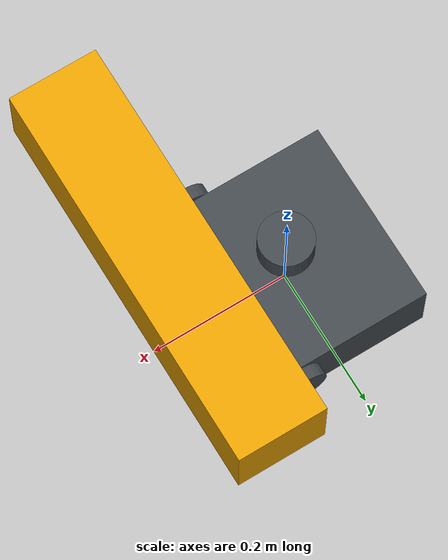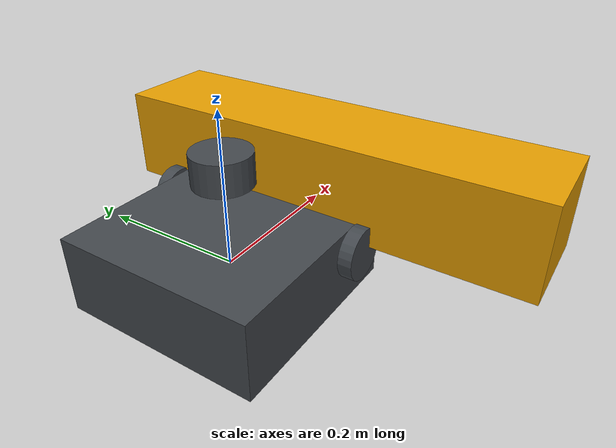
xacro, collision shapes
<?xml version="1.0" ?>
<robot name="turtlebot3" xmlns:xacro="http://ros.org/wiki/xacro">

  <xacro:property name="r200_cam_offset_px" value="0.1" />
  <xacro:property name="r200_cam_offset_py" value="-0.028" />
  <xacro:property name="r200_cam_offset_pz" value="0.110" />

  <xacro:property name="r200_cam_rgb_px" value="0.005"/>
  <xacro:property name="r200_cam_rgb_py" value="0.018"/>
  <xacro:property name="r200_cam_rgb_pz" value="0.013"/>
  <xacro:property name="r200_cam_depth_offset" value="0.01"/>

  <xacro:property name="M_PI" value="3.1415926535897931" />

  <!-- Init colour -->
  <material name="black">
    <color rgba="0.0 0.0 0.0 1.0"/>
  </material>
  <material name="light_black">
    <color rgba="0.26 0.28 0.30 1.0"/>
  </material>

  <!-- TurtleBot3 Base-->
  <link name="base_footprint"/>

  <joint name="base_joint" type="fixed">
    <parent link="base_footprint"/>
    <child link="base_link" />
    <origin xyz="0 0 0.010" rpy="0 0 0"/>
  </joint>

  <link name="base_link">
    <visual>
      <origin xyz="0 0 0.0" rpy="0 0 0"/>
      <geometry>
        <mesh filename="package://turtlebot3_description/meshes/premium_base.stl" scale="0.001 0.001 0.001"/>
      </geometry>
      <material name="light_black"/>
    </visual>
    <collision>
      <origin xyz="0 0 0.0" rpy="0 0 0"/>
      <geometry>
        <box size="0.266 0.266 0.1"/>
      </geometry>
      <material name="light_black"/>
    </collision>
    <inertial>
      <origin xyz="0 0 0" rpy="0 0 0"/>
      <mass value="1"/>
      <inertia ixx="0.01" ixy="0.0" ixz="0.0"
               iyy="0.01" iyz="0.0"
               izz="0.01" />
    </inertial>
  </link>

  <!-- TurtleBot3 Wheels-->
  <joint name="wheel_left_joint" type="continuous">
    <parent link="base_link"/>
    <child link="wheel_left_link"/>
    <origin xyz="0.064 0.144 0.021" rpy="${-M_PI*0.5} 0 0"/>
    <axis xyz="0 0 1"/>
  </joint>

  <link name="wheel_left_link">
    <visual>
      <origin xyz="0 0 0" rpy="${M_PI*0.5} 0 0"/>
      <geometry>
        <mesh filename="package://turtlebot3_description/meshes/left_tire.stl" scale="0.001 0.001 0.001"/>
      </geometry>
      <material name="light_black"/>
    </visual>
    <collision>
      <origin rpy="0 0 0" xyz="0 0 0"/>
      <geometry>
        <cylinder length="0.018" radius="0.033"/>
      </geometry>
    </collision>
    <inertial>
      <origin xyz="0 0 0" />
      <mass value="0.01" />
      <inertia ixx="0.001" ixy="0.0" ixz="0.0"
               iyy="0.001" iyz="0.0"
               izz="0.001" />
    </inertial>
  </link>

  <joint name="wheel_right_joint" type="continuous">
    <parent link="base_link"/>
    <child link="wheel_right_link"/>
    <origin xyz="0.064 -0.144 0.021" rpy="${-M_PI*0.5} 0 0"/>
    <axis xyz="0 0 1"/>
  </joint>

  <link name="wheel_right_link">
    <visual>
      <origin xyz="0 0 0" rpy="${M_PI*0.5} 0 0"/>
      <geometry>
        <mesh filename="package://turtlebot3_description/meshes/right_tire.stl" scale="0.001 0.001 0.001"/>
      </geometry>
      <material name="light_black"/>
    </visual>
    <collision>
      <origin rpy="0 0 0" xyz="0 0 0"/>
      <geometry>
        <cylinder length="0.018" radius="0.033"/>
      </geometry>
    </collision>
    <inertial>
      <origin xyz="0 0 0" />
      <mass value="0.01" />
      <inertia ixx="0.001" ixy="0.0" ixz="0.0"
               iyy="0.001" iyz="0.0"
               izz="0.001" />
    </inertial>
  </link>

  <joint name="caster_back_right_joint" type="fixed">
    <parent link="base_link"/>
    <child link="caster_back_right_link"/>
    <origin xyz="-0.113 -0.064 -0.004" rpy="${-M_PI*0.5} 0 0"/>
  </joint>

  <link name="caster_back_right_link">
    <collision>
      <origin rpy="0 0 0" xyz="0 0 0"/>
      <geometry>
        <box size="0.030 0.018 0.010"/>
      </geometry>
    </collision>

    <inertial>
      <origin xyz="0 0 0" />
      <mass value="0.01" />
      <inertia ixx="0.001" ixy="0.0" ixz="0.0"
               iyy="0.001" iyz="0.0"
               izz="0.001" />
    </inertial>
  </link>

  <joint name="caster_back_left_joint" type="fixed">
    <parent link="base_link"/>
    <child link="caster_back_left_link"/>
    <origin xyz="-0.113 0.064 -0.004" rpy="${-M_PI*0.5} 0 0"/>
  </joint>

  <link name="caster_back_left_link">
    <collision>
      <origin rpy="0 0 0" xyz="0 0 0"/>
      <geometry>
        <box size="0.030 0.018 0.010"/>
      </geometry>
    </collision>

    <inertial>
      <origin xyz="0 0 0" />
      <mass value="0.01" />
      <inertia ixx="0.001" ixy="0.0" ixz="0.0"
               iyy="0.001" iyz="0.0"
               izz="0.001" />
    </inertial>
  </link>

  <!-- TurtleBot3 Sensors-->
  <joint name="gyro_joint" type="fixed">
    <parent link="base_link"/>
    <child link="gyro_link"/>
    <origin xyz="0.064 0 0.057" rpy="0 0 0"/>
  </joint>

  <link name="gyro_link">
    <inertial>
      <origin xyz="0 0 0" />
      <mass value="0.01" />
      <inertia ixx="0.001" ixy="0.0" ixz="0.0"
               iyy="0.001" iyz="0.0"
               izz="0.001" />
    </inertial>
  </link>

  <joint name="scan_joint" type="fixed">
    <parent link="base_link"/>
    <child link="base_scan"/>
    <origin xyz="0 0 0.121" rpy="0 0 0"/>
  </joint>

  <link name="base_scan">
    <visual>
      <origin xyz="0 0 0.0" rpy="0 0 0"/>
      <geometry>
        <mesh filename="package://turtlebot3_description/meshes/sensors/lds.stl" scale="0.001 0.001 0.001"/>
      </geometry>
      <material name="light_black"/>
    </visual>
    <collision>
      <origin rpy="0 0 0" xyz="0 0 0"/>
      <geometry>
        <cylinder length="0.0408" radius="0.03785"/>
      </geometry>
    </collision>
    <inertial>
      <mass value="0.01" />
      <origin xyz="0 0 0" />
      <inertia ixx="0.001" ixy="0.0" ixz="0.0"
               iyy="0.001" iyz="0.0"
               izz="0.001" />
    </inertial>
  </link>

  <joint name="camera_joint" type="fixed">
    <origin xyz="0.140 -0.065 0.084" rpy="0 0 0"/>
    <parent link="base_link"/>
    <child link="camera_link" />
  </joint>

  <link name="camera_link">
    <visual>
     <origin xyz="0 0 0" rpy="${M_PI*0.5} 0 ${M_PI*0.5}"/>
      <geometry>
       <mesh filename="package://turtlebot3_description/meshes/sensors/r200.dae" />
      </geometry>
    </visual>
    <collision>
      <origin xyz="0.0 0.0 0.0" rpy="0 0 0"/>
      <geometry>
        <box size="0.130 0.567 0.118"/>
      </geometry>
    </collision>-->

    <!-- This inertial field needs doesn't contain reliable data!! -->
   <inertial>
      <mass value="0.564" />
      <origin xyz="0 0 0" />
      <inertia ixx="0.003881243" ixy="0.0" ixz="0.0"
               iyy="0.000498940" iyz="0.0"
               izz="0.003879257" />
    </inertial>
  </link>

  <!-- RGB joints & links -->

  <joint name="camera_rgb_joint" type="fixed">
    <origin xyz="${r200_cam_rgb_px} ${r200_cam_rgb_py} ${r200_cam_rgb_pz}" rpy="0 0 0"/>
    <parent link="camera_link"/>
    <child link="camera_rgb_frame" />
  </joint>
  <link name="camera_rgb_frame"/>

  <joint name="camera_rgb_optical_joint" type="fixed">
    <origin xyz="0 0 0" rpy="${-M_PI/2} 0 ${-M_PI/2}" />
    <parent link="camera_rgb_frame" />
    <child link="camera_rgb_optical_frame" />
  </joint>
  <link name="camera_rgb_optical_frame"/>

  <!--Depth joints & links -->

  <joint name="camera_depth_joint" type="fixed">
      <origin xyz="0 ${r200_cam_depth_offset} 0" rpy="0 0 0" />
      <parent link="camera_rgb_frame" />
      <child link="camera_depth_frame" />
  </joint>
  <link name="camera_depth_frame"/>

  <joint name="camera_depth_optical_joint" type="fixed">
      <origin xyz="0 0 0" rpy="${-M_PI/2} 0 ${-M_PI/2}" />
      <parent link="camera_depth_frame" />
      <child link="camera_depth_optical_frame" />
  </joint>
  <link name="camera_depth_optical_frame"/>

</robot>
